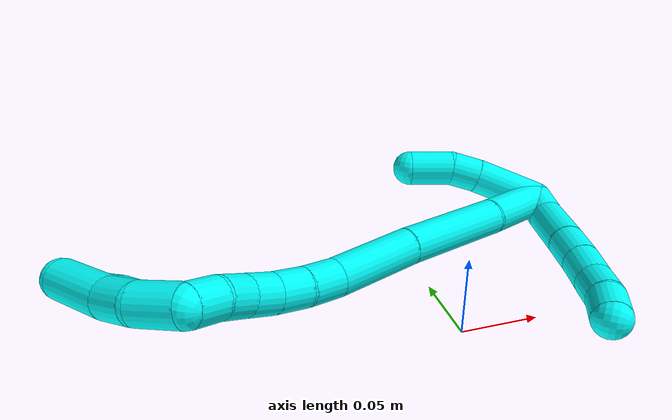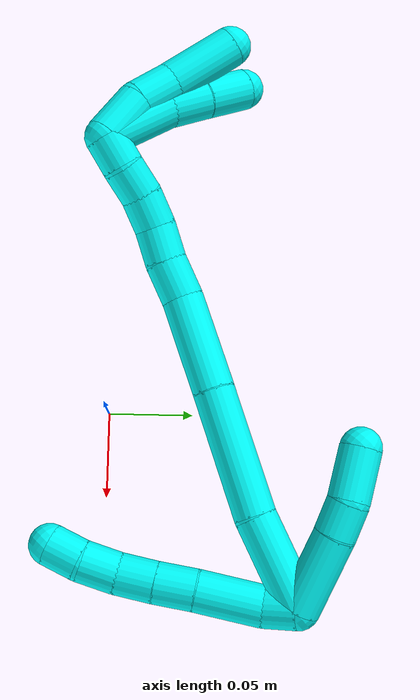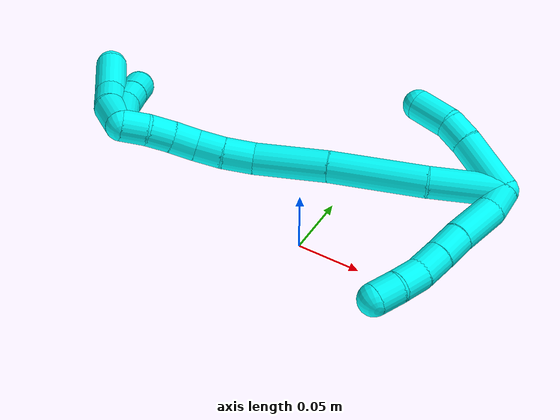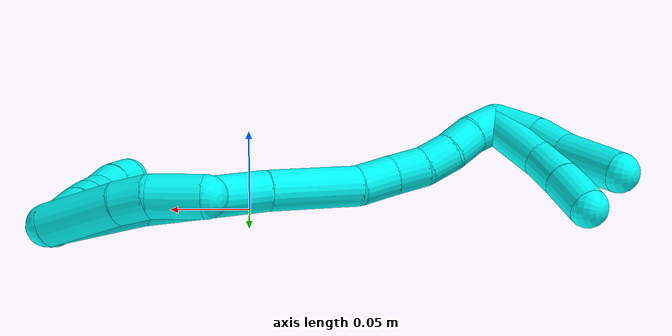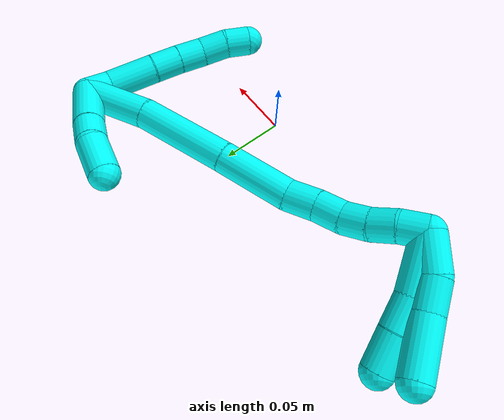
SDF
<sdf version="1.7">
 <world name="default">
  <model name="3">
   <static>0</static>
   <link name="3">
    <collision name="collision-cylinder-e_1_2_8">
     <pose>-0.007855 -0.001247 0.006347 0.193959 -0.881905 -0.091761</pose>
     <geometry><cylinder><radius>0.0125</radius><length>0.020351</length></cylinder></geometry>
     <surface>
      <friction><ode><mu>1.16</mu><mu2>1.16</mu2><slip1>0</slip1><slip2>0</slip2></ode></friction>
      <contact><ode><kp>1e+06</kp><kd>1</kd><max_vel>0</max_vel><min_depth>0.001</min_depth></ode></contact>
     </surface>
    </collision>
    <visual name="visual-cylinder-e_1_2_8">
     <pose>-0.007855 -0.001247 0.006347 0.193959 -0.881905 -0.091761</pose>
     <geometry><cylinder><radius>0.0125</radius><length>0.020351</length></cylinder></geometry>
     <material><ambient>0.003922 1 0.996078 1</ambient></material>
    </visual>
    <collision name="collision-cylinder-e_2_8_9">
     <pose>-0.032533 0.001292 0.023337 -0.34175 -0.979459 0.183445</pose>
     <geometry><cylinder><radius>0.0125</radius><length>0.040527</length></cylinder></geometry>
     <surface>
      <friction><ode><mu>1.16</mu><mu2>1.16</mu2><slip1>0</slip1><slip2>0</slip2></ode></friction>
      <contact><ode><kp>1e+06</kp><kd>1</kd><max_vel>0</max_vel><min_depth>0.001</min_depth></ode></contact>
     </surface>
    </collision>
    <visual name="visual-cylinder-e_2_8_9">
     <pose>-0.032533 0.001292 0.023337 -0.34175 -0.979459 0.183445</pose>
     <geometry><cylinder><radius>0.0125</radius><length>0.040527</length></cylinder></geometry>
     <material><ambient>0.003922 1 0.996078 1</ambient></material>
    </visual>
    <collision name="collision-cylinder-e_3_9_10">
     <pose>-0.059103 0.006417 0.040542 -0.201334 -0.968872 0.106214</pose>
     <geometry><cylinder><radius>0.0125</radius><length>0.023653</length></cylinder></geometry>
     <surface>
      <friction><ode><mu>1.16</mu><mu2>1.16</mu2><slip1>0</slip1><slip2>0</slip2></ode></friction>
      <contact><ode><kp>1e+06</kp><kd>1</kd><max_vel>0</max_vel><min_depth>0.001</min_depth></ode></contact>
     </surface>
    </collision>
    <visual name="visual-cylinder-e_3_9_10">
     <pose>-0.059103 0.006417 0.040542 -0.201334 -0.968872 0.106214</pose>
     <geometry><cylinder><radius>0.0125</radius><length>0.023653</length></cylinder></geometry>
     <material><ambient>0.003922 1 0.996078 1</ambient></material>
    </visual>
    <collision name="collision-cylinder-e_4_10_11">
     <pose>-0.078486 0.008891 0.052959 -0.191393 -1.01647 0.106839</pose>
     <geometry><cylinder><radius>0.0125</radius><length>0.022664</length></cylinder></geometry>
     <surface>
      <friction><ode><mu>1.16</mu><mu2>1.16</mu2><slip1>0</slip1><slip2>0</slip2></ode></friction>
      <contact><ode><kp>1e+06</kp><kd>1</kd><max_vel>0</max_vel><min_depth>0.001</min_depth></ode></contact>
     </surface>
    </collision>
    <visual name="visual-cylinder-e_4_10_11">
     <pose>-0.078486 0.008891 0.052959 -0.191393 -1.01647 0.106839</pose>
     <geometry><cylinder><radius>0.0125</radius><length>0.022664</length></cylinder></geometry>
     <material><ambient>0.003922 1 0.996078 1</ambient></material>
    </visual>
    <collision name="collision-cylinder-e_5_11_12">
     <pose>-0.097803 0.013113 0.063752 -0.558855 -1.02933 0.321719</pose>
     <geometry><cylinder><radius>0.0125</radius><length>0.022595</length></cylinder></geometry>
     <surface>
      <friction><ode><mu>1.16</mu><mu2>1.16</mu2><slip1>0</slip1><slip2>0</slip2></ode></friction>
      <contact><ode><kp>1e+06</kp><kd>1</kd><max_vel>0</max_vel><min_depth>0.001</min_depth></ode></contact>
     </surface>
    </collision>
    <visual name="visual-cylinder-e_5_11_12">
     <pose>-0.097803 0.013113 0.063752 -0.558855 -1.02933 0.321719</pose>
     <geometry><cylinder><radius>0.0125</radius><length>0.022595</length></cylinder></geometry>
     <material><ambient>0.003922 1 0.996078 1</ambient></material>
    </visual>
    <collision name="collision-cylinder-e_6_12_6">
     <pose>-0.116989 0.017732 0.07176 -0.462653 -1.22425 0.327775</pose>
     <geometry><cylinder><radius>0.0125</radius><length>0.02021</length></cylinder></geometry>
     <surface>
      <friction><ode><mu>1.16</mu><mu2>1.16</mu2><slip1>0</slip1><slip2>0</slip2></ode></friction>
      <contact><ode><kp>1e+06</kp><kd>1</kd><max_vel>0</max_vel><min_depth>0.001</min_depth></ode></contact>
     </surface>
    </collision>
    <visual name="visual-cylinder-e_6_12_6">
     <pose>-0.116989 0.017732 0.07176 -0.462653 -1.22425 0.327775</pose>
     <geometry><cylinder><radius>0.0125</radius><length>0.02021</length></cylinder></geometry>
     <material><ambient>0.003922 1 0.996078 1</ambient></material>
    </visual>
    <collision name="collision-cylinder-e_1_2_13">
     <pose>-0.005354 0.010159 -0.021245 -2.69557 -0.223555 0.919182</pose>
     <geometry><cylinder><radius>0.0125</radius><length>0.0483</length></cylinder></geometry>
     <surface>
      <friction><ode><mu>1.16</mu><mu2>1.16</mu2><slip1>0</slip1><slip2>0</slip2></ode></friction>
      <contact><ode><kp>1e+06</kp><kd>1</kd><max_vel>0</max_vel><min_depth>0.001</min_depth></ode></contact>
     </surface>
    </collision>
    <visual name="visual-cylinder-e_1_2_13">
     <pose>-0.005354 0.010159 -0.021245 -2.69557 -0.223555 0.919182</pose>
     <geometry><cylinder><radius>0.0125</radius><length>0.0483</length></cylinder></geometry>
     <material><ambient>0.003922 1 0.996078 1</ambient></material>
    </visual>
    <collision name="collision-cylinder-e_2_13_14">
     <pose>-0.013762 0.02401 -0.051553 -2.75474 -0.302483 1.32245</pose>
     <geometry><cylinder><radius>0.0125</radius><length>0.020504</length></cylinder></geometry>
     <surface>
      <friction><ode><mu>1.16</mu><mu2>1.16</mu2><slip1>0</slip1><slip2>0</slip2></ode></friction>
      <contact><ode><kp>1e+06</kp><kd>1</kd><max_vel>0</max_vel><min_depth>0.001</min_depth></ode></contact>
     </surface>
    </collision>
    <visual name="visual-cylinder-e_2_13_14">
     <pose>-0.013762 0.02401 -0.051553 -2.75474 -0.302483 1.32245</pose>
     <geometry><cylinder><radius>0.0125</radius><length>0.020504</length></cylinder></geometry>
     <material><ambient>0.003922 1 0.996078 1</ambient></material>
    </visual>
    <collision name="collision-cylinder-e_3_14_5">
     <pose>-0.02442 0.030161 -0.074012 -2.96003 -0.509191 2.46859</pose>
     <geometry><cylinder><radius>0.0125</radius><length>0.031196</length></cylinder></geometry>
     <surface>
      <friction><ode><mu>1.16</mu><mu2>1.16</mu2><slip1>0</slip1><slip2>0</slip2></ode></friction>
      <contact><ode><kp>1e+06</kp><kd>1</kd><max_vel>0</max_vel><min_depth>0.001</min_depth></ode></contact>
     </surface>
    </collision>
    <visual name="visual-cylinder-e_3_14_5">
     <pose>-0.02442 0.030161 -0.074012 -2.96003 -0.509191 2.46859</pose>
     <geometry><cylinder><radius>0.0125</radius><length>0.031196</length></cylinder></geometry>
     <material><ambient>0.003922 1 0.996078 1</ambient></material>
    </visual>
    <collision name="collision-cylinder-e_1_2_15">
     <pose>-0.025887 0.008191 -0.009751 -2.44293 -1.11364 2.08274</pose>
     <geometry><cylinder><radius>0.0125</radius><length>0.057699</length></cylinder></geometry>
     <surface>
      <friction><ode><mu>1.16</mu><mu2>1.16</mu2><slip1>0</slip1><slip2>0</slip2></ode></friction>
      <contact><ode><kp>1e+06</kp><kd>1</kd><max_vel>0</max_vel><min_depth>0.001</min_depth></ode></contact>
     </surface>
    </collision>
    <visual name="visual-cylinder-e_1_2_15">
     <pose>-0.025887 0.008191 -0.009751 -2.44293 -1.11364 2.08274</pose>
     <geometry><cylinder><radius>0.0125</radius><length>0.057699</length></cylinder></geometry>
     <material><ambient>0.003922 1 0.996078 1</ambient></material>
    </visual>
    <collision name="collision-cylinder-e_2_15_16">
     <pose>-0.084851 0.024696 -0.037017 -2.69839 -1.0406 2.39229</pose>
     <geometry><cylinder><radius>0.0125</radius><length>0.076682</length></cylinder></geometry>
     <surface>
      <friction><ode><mu>1.16</mu><mu2>1.16</mu2><slip1>0</slip1><slip2>0</slip2></ode></friction>
      <contact><ode><kp>1e+06</kp><kd>1</kd><max_vel>0</max_vel><min_depth>0.001</min_depth></ode></contact>
     </surface>
    </collision>
    <visual name="visual-cylinder-e_2_15_16">
     <pose>-0.084851 0.024696 -0.037017 -2.69839 -1.0406 2.39229</pose>
     <geometry><cylinder><radius>0.0125</radius><length>0.076682</length></cylinder></geometry>
     <material><ambient>0.003922 1 0.996078 1</ambient></material>
    </visual>
    <collision name="collision-cylinder-e_3_16_17">
     <pose>-0.143574 0.037669 -0.067806 -2.80408 -1.06909 2.58117</pose>
     <geometry><cylinder><radius>0.0125</radius><length>0.058502</length></cylinder></geometry>
     <surface>
      <friction><ode><mu>1.16</mu><mu2>1.16</mu2><slip1>0</slip1><slip2>0</slip2></ode></friction>
      <contact><ode><kp>1e+06</kp><kd>1</kd><max_vel>0</max_vel><min_depth>0.001</min_depth></ode></contact>
     </surface>
    </collision>
    <visual name="visual-cylinder-e_3_16_17">
     <pose>-0.143574 0.037669 -0.067806 -2.80408 -1.06909 2.58117</pose>
     <geometry><cylinder><radius>0.0125</radius><length>0.058502</length></cylinder></geometry>
     <material><ambient>0.003922 1 0.996078 1</ambient></material>
    </visual>
    <collision name="collision-cylinder-e_4_17_18">
     <pose>-0.179832 0.046696 -0.085282 -2.33666 -1.05182 1.87599</pose>
     <geometry><cylinder><radius>0.0125</radius><length>0.024441</length></cylinder></geometry>
     <surface>
      <friction><ode><mu>1.16</mu><mu2>1.16</mu2><slip1>0</slip1><slip2>0</slip2></ode></friction>
      <contact><ode><kp>1e+06</kp><kd>1</kd><max_vel>0</max_vel><min_depth>0.001</min_depth></ode></contact>
     </surface>
    </collision>
    <visual name="visual-cylinder-e_4_17_18">
     <pose>-0.179832 0.046696 -0.085282 -2.33666 -1.05182 1.87599</pose>
     <geometry><cylinder><radius>0.0125</radius><length>0.024441</length></cylinder></geometry>
     <material><ambient>0.003922 1 0.996078 1</ambient></material>
    </visual>
    <collision name="collision-cylinder-e_5_18_19">
     <pose>-0.199184 0.055001 -0.094359 -2.46237 -0.948832 1.93637</pose>
     <geometry><cylinder><radius>0.0125</radius><length>0.02151</length></cylinder></geometry>
     <surface>
      <friction><ode><mu>1.16</mu><mu2>1.16</mu2><slip1>0</slip1><slip2>0</slip2></ode></friction>
      <contact><ode><kp>1e+06</kp><kd>1</kd><max_vel>0</max_vel><min_depth>0.001</min_depth></ode></contact>
     </surface>
    </collision>
    <visual name="visual-cylinder-e_5_18_19">
     <pose>-0.199184 0.055001 -0.094359 -2.46237 -0.948832 1.93637</pose>
     <geometry><cylinder><radius>0.0125</radius><length>0.02151</length></cylinder></geometry>
     <material><ambient>0.003922 1 0.996078 1</ambient></material>
    </visual>
    <collision name="collision-cylinder-e_6_19_20">
     <pose>-0.216025 0.06448 -0.102464 -2.09841 -0.90095 1.39918</pose>
     <geometry><cylinder><radius>0.0125</radius><length>0.020664</length></cylinder></geometry>
     <surface>
      <friction><ode><mu>1.16</mu><mu2>1.16</mu2><slip1>0</slip1><slip2>0</slip2></ode></friction>
      <contact><ode><kp>1e+06</kp><kd>1</kd><max_vel>0</max_vel><min_depth>0.001</min_depth></ode></contact>
     </surface>
    </collision>
    <visual name="visual-cylinder-e_6_19_20">
     <pose>-0.216025 0.06448 -0.102464 -2.09841 -0.90095 1.39918</pose>
     <geometry><cylinder><radius>0.0125</radius><length>0.020664</length></cylinder></geometry>
     <material><ambient>0.003922 1 0.996078 1</ambient></material>
    </visual>
    <collision name="collision-cylinder-e_7_20_21">
     <pose>-0.232049 0.076136 -0.107161 -1.80636 -0.900122 1.09957</pose>
     <geometry><cylinder><radius>0.0125</radius><length>0.020232</length></cylinder></geometry>
     <surface>
      <friction><ode><mu>1.16</mu><mu2>1.16</mu2><slip1>0</slip1><slip2>0</slip2></ode></friction>
      <contact><ode><kp>1e+06</kp><kd>1</kd><max_vel>0</max_vel><min_depth>0.001</min_depth></ode></contact>
     </surface>
    </collision>
    <visual name="visual-cylinder-e_7_20_21">
     <pose>-0.232049 0.076136 -0.107161 -1.80636 -0.900122 1.09957</pose>
     <geometry><cylinder><radius>0.0125</radius><length>0.020232</length></cylinder></geometry>
     <material><ambient>0.003922 1 0.996078 1</ambient></material>
    </visual>
    <collision name="collision-cylinder-e_8_21_1">
     <pose>-0.248729 0.086822 -0.110901 -2.03209 -1.04282 1.49508</pose>
     <geometry><cylinder><radius>0.0125</radius><length>0.02027</length></cylinder></geometry>
     <surface>
      <friction><ode><mu>1.16</mu><mu2>1.16</mu2><slip1>0</slip1><slip2>0</slip2></ode></friction>
      <contact><ode><kp>1e+06</kp><kd>1</kd><max_vel>0</max_vel><min_depth>0.001</min_depth></ode></contact>
     </surface>
    </collision>
    <visual name="visual-cylinder-e_8_21_1">
     <pose>-0.248729 0.086822 -0.110901 -2.03209 -1.04282 1.49508</pose>
     <geometry><cylinder><radius>0.0125</radius><length>0.02027</length></cylinder></geometry>
     <material><ambient>0.003922 1 0.996078 1</ambient></material>
    </visual>
    <collision name="collision-cylinder-e_1_1_22">
     <pose>-0.254775 0.083086 -0.134309 2.76706 0.118709 0.607789</pose>
     <geometry><cylinder><radius>0.0125</radius><length>0.045742</length></cylinder></geometry>
     <surface>
      <friction><ode><mu>1.16</mu><mu2>1.16</mu2><slip1>0</slip1><slip2>0</slip2></ode></friction>
      <contact><ode><kp>1e+06</kp><kd>1</kd><max_vel>0</max_vel><min_depth>0.001</min_depth></ode></contact>
     </surface>
    </collision>
    <visual name="visual-cylinder-e_1_1_22">
     <pose>-0.254775 0.083086 -0.134309 2.76706 0.118709 0.607789</pose>
     <geometry><cylinder><radius>0.0125</radius><length>0.045742</length></cylinder></geometry>
     <material><ambient>0.003922 1 0.996078 1</ambient></material>
    </visual>
    <collision name="collision-cylinder-e_2_22_23">
     <pose>-0.248277 0.06989 -0.166769 2.73413 0.298105 1.25704</pose>
     <geometry><cylinder><radius>0.0125</radius><length>0.025806</length></cylinder></geometry>
     <surface>
      <friction><ode><mu>1.16</mu><mu2>1.16</mu2><slip1>0</slip1><slip2>0</slip2></ode></friction>
      <contact><ode><kp>1e+06</kp><kd>1</kd><max_vel>0</max_vel><min_depth>0.001</min_depth></ode></contact>
     </surface>
    </collision>
    <visual name="visual-cylinder-e_2_22_23">
     <pose>-0.248277 0.06989 -0.166769 2.73413 0.298105 1.25704</pose>
     <geometry><cylinder><radius>0.0125</radius><length>0.025806</length></cylinder></geometry>
     <material><ambient>0.003922 1 0.996078 1</ambient></material>
    </visual>
    <collision name="collision-cylinder-e_3_23_4">
     <pose>-0.240731 0.058839 -0.190352 2.67573 0.267202 1.03089</pose>
     <geometry><cylinder><radius>0.0125</radius><length>0.028452</length></cylinder></geometry>
     <surface>
      <friction><ode><mu>1.16</mu><mu2>1.16</mu2><slip1>0</slip1><slip2>0</slip2></ode></friction>
      <contact><ode><kp>1e+06</kp><kd>1</kd><max_vel>0</max_vel><min_depth>0.001</min_depth></ode></contact>
     </surface>
    </collision>
    <visual name="visual-cylinder-e_3_23_4">
     <pose>-0.240731 0.058839 -0.190352 2.67573 0.267202 1.03089</pose>
     <geometry><cylinder><radius>0.0125</radius><length>0.028452</length></cylinder></geometry>
     <material><ambient>0.003922 1 0.996078 1</ambient></material>
    </visual>
    <collision name="collision-cylinder-e_1_1_24">
     <pose>-0.259881 0.089529 -0.12802 3.01659 -0.158857 -1.80898</pose>
     <geometry><cylinder><radius>0.0125</radius><length>0.030309</length></cylinder></geometry>
     <surface>
      <friction><ode><mu>1.16</mu><mu2>1.16</mu2><slip1>0</slip1><slip2>0</slip2></ode></friction>
      <contact><ode><kp>1e+06</kp><kd>1</kd><max_vel>0</max_vel><min_depth>0.001</min_depth></ode></contact>
     </surface>
    </collision>
    <visual name="visual-cylinder-e_1_1_24">
     <pose>-0.259881 0.089529 -0.12802 3.01659 -0.158857 -1.80898</pose>
     <geometry><cylinder><radius>0.0125</radius><length>0.030309</length></cylinder></geometry>
     <material><ambient>0.003922 1 0.996078 1</ambient></material>
    </visual>
    <collision name="collision-cylinder-e_2_24_25">
     <pose>-0.260861 0.084371 -0.154998 2.87662 0.112321 0.798405</pose>
     <geometry><cylinder><radius>0.0125</radius><length>0.025299</length></cylinder></geometry>
     <surface>
      <friction><ode><mu>1.16</mu><mu2>1.16</mu2><slip1>0</slip1><slip2>0</slip2></ode></friction>
      <contact><ode><kp>1e+06</kp><kd>1</kd><max_vel>0</max_vel><min_depth>0.001</min_depth></ode></contact>
     </surface>
    </collision>
    <visual name="visual-cylinder-e_2_24_25">
     <pose>-0.260861 0.084371 -0.154998 2.87662 0.112321 0.798405</pose>
     <geometry><cylinder><radius>0.0125</radius><length>0.025299</length></cylinder></geometry>
     <material><ambient>0.003922 1 0.996078 1</ambient></material>
    </visual>
    <collision name="collision-cylinder-e_3_25_3">
     <pose>-0.255968 0.078417 -0.18889 3.01987 0.157179 1.82448</pose>
     <geometry><cylinder><radius>0.0125</radius><length>0.044392</length></cylinder></geometry>
     <surface>
      <friction><ode><mu>1.16</mu><mu2>1.16</mu2><slip1>0</slip1><slip2>0</slip2></ode></friction>
      <contact><ode><kp>1e+06</kp><kd>1</kd><max_vel>0</max_vel><min_depth>0.001</min_depth></ode></contact>
     </surface>
    </collision>
    <visual name="visual-cylinder-e_3_25_3">
     <pose>-0.255968 0.078417 -0.18889 3.01987 0.157179 1.82448</pose>
     <geometry><cylinder><radius>0.0125</radius><length>0.044392</length></cylinder></geometry>
     <material><ambient>0.003922 1 0.996078 1</ambient></material>
    </visual>
    <collision name="collision-sphere-3">
     <pose>-0.252494 0.075755 -0.21065 0 -0 0</pose>
     <geometry><sphere><radius>0.0125</radius></sphere></geometry>
     <surface>
      <friction><ode><mu>1.16</mu><mu2>1.16</mu2><slip1>0</slip1><slip2>0</slip2></ode></friction>
      <contact><ode><kp>1e+06</kp><kd>1</kd><max_vel>0</max_vel><min_depth>0.001</min_depth></ode></contact>
     </surface>
    </collision>
    <visual name="visual-sphere-3">
     <pose>-0.252494 0.075755 -0.21065 0 -0 0</pose>
     <geometry><sphere><radius>0.0125</radius></sphere></geometry>
     <material><ambient>0.003922 1 0.996078 1</ambient></material>
    </visual>
    <collision name="collision-sphere-25">
     <pose>-0.259443 0.081079 -0.16713 0 -0 0</pose>
     <geometry><sphere><radius>0.0125</radius></sphere></geometry>
     <surface>
      <friction><ode><mu>1.16</mu><mu2>1.16</mu2><slip1>0</slip1><slip2>0</slip2></ode></friction>
      <contact><ode><kp>1e+06</kp><kd>1</kd><max_vel>0</max_vel><min_depth>0.001</min_depth></ode></contact>
     </surface>
    </collision>
    <visual name="visual-sphere-25">
     <pose>-0.259443 0.081079 -0.16713 0 -0 0</pose>
     <geometry><sphere><radius>0.0125</radius></sphere></geometry>
     <material><ambient>0.003922 1 0.996078 1</ambient></material>
    </visual>
    <collision name="collision-sphere-24">
     <pose>-0.262278 0.087663 -0.142867 0 -0 0</pose>
     <geometry><sphere><radius>0.0125</radius></sphere></geometry>
     <surface>
      <friction><ode><mu>1.16</mu><mu2>1.16</mu2><slip1>0</slip1><slip2>0</slip2></ode></friction>
      <contact><ode><kp>1e+06</kp><kd>1</kd><max_vel>0</max_vel><min_depth>0.001</min_depth></ode></contact>
     </surface>
    </collision>
    <visual name="visual-sphere-24">
     <pose>-0.262278 0.087663 -0.142867 0 -0 0</pose>
     <geometry><sphere><radius>0.0125</radius></sphere></geometry>
     <material><ambient>0.003922 1 0.996078 1</ambient></material>
    </visual>
    <collision name="collision-sphere-4">
     <pose>-0.236975 0.052676 -0.202611 0 -0 0</pose>
     <geometry><sphere><radius>0.0125</radius></sphere></geometry>
     <surface>
      <friction><ode><mu>1.16</mu><mu2>1.16</mu2><slip1>0</slip1><slip2>0</slip2></ode></friction>
      <contact><ode><kp>1e+06</kp><kd>1</kd><max_vel>0</max_vel><min_depth>0.001</min_depth></ode></contact>
     </surface>
    </collision>
    <visual name="visual-sphere-4">
     <pose>-0.236975 0.052676 -0.202611 0 -0 0</pose>
     <geometry><sphere><radius>0.0125</radius></sphere></geometry>
     <material><ambient>0.003922 1 0.996078 1</ambient></material>
    </visual>
    <collision name="collision-sphere-23">
     <pose>-0.244487 0.065003 -0.178093 0 -0 0</pose>
     <geometry><sphere><radius>0.0125</radius></sphere></geometry>
     <surface>
      <friction><ode><mu>1.16</mu><mu2>1.16</mu2><slip1>0</slip1><slip2>0</slip2></ode></friction>
      <contact><ode><kp>1e+06</kp><kd>1</kd><max_vel>0</max_vel><min_depth>0.001</min_depth></ode></contact>
     </surface>
    </collision>
    <visual name="visual-sphere-23">
     <pose>-0.244487 0.065003 -0.178093 0 -0 0</pose>
     <geometry><sphere><radius>0.0125</radius></sphere></geometry>
     <material><ambient>0.003922 1 0.996078 1</ambient></material>
    </visual>
    <collision name="collision-sphere-22">
     <pose>-0.252067 0.074778 -0.155445 0 -0 0</pose>
     <geometry><sphere><radius>0.0125</radius></sphere></geometry>
     <surface>
      <friction><ode><mu>1.16</mu><mu2>1.16</mu2><slip1>0</slip1><slip2>0</slip2></ode></friction>
      <contact><ode><kp>1e+06</kp><kd>1</kd><max_vel>0</max_vel><min_depth>0.001</min_depth></ode></contact>
     </surface>
    </collision>
    <visual name="visual-sphere-22">
     <pose>-0.252067 0.074778 -0.155445 0 -0 0</pose>
     <geometry><sphere><radius>0.0125</radius></sphere></geometry>
     <material><ambient>0.003922 1 0.996078 1</ambient></material>
    </visual>
    <collision name="collision-sphere-1">
     <pose>-0.257484 0.091394 -0.113173 0 -0 0</pose>
     <geometry><sphere><radius>0.0125</radius></sphere></geometry>
     <surface>
      <friction><ode><mu>1.16</mu><mu2>1.16</mu2><slip1>0</slip1><slip2>0</slip2></ode></friction>
      <contact><ode><kp>1e+06</kp><kd>1</kd><max_vel>0</max_vel><min_depth>0.001</min_depth></ode></contact>
     </surface>
    </collision>
    <visual name="visual-sphere-1">
     <pose>-0.257484 0.091394 -0.113173 0 -0 0</pose>
     <geometry><sphere><radius>0.0125</radius></sphere></geometry>
     <material><ambient>0.003922 1 0.996078 1</ambient></material>
    </visual>
    <collision name="collision-sphere-21">
     <pose>-0.239974 0.08225 -0.108628 0 -0 0</pose>
     <geometry><sphere><radius>0.0125</radius></sphere></geometry>
     <surface>
      <friction><ode><mu>1.16</mu><mu2>1.16</mu2><slip1>0</slip1><slip2>0</slip2></ode></friction>
      <contact><ode><kp>1e+06</kp><kd>1</kd><max_vel>0</max_vel><min_depth>0.001</min_depth></ode></contact>
     </surface>
    </collision>
    <visual name="visual-sphere-21">
     <pose>-0.239974 0.08225 -0.108628 0 -0 0</pose>
     <geometry><sphere><radius>0.0125</radius></sphere></geometry>
     <material><ambient>0.003922 1 0.996078 1</ambient></material>
    </visual>
    <collision name="collision-sphere-12">
     <pose>-0.107484 0.0162 0.068688 0 -0 0</pose>
     <geometry><sphere><radius>0.0125</radius></sphere></geometry>
     <surface>
      <friction><ode><mu>1.16</mu><mu2>1.16</mu2><slip1>0</slip1><slip2>0</slip2></ode></friction>
      <contact><ode><kp>1e+06</kp><kd>1</kd><max_vel>0</max_vel><min_depth>0.001</min_depth></ode></contact>
     </surface>
    </collision>
    <visual name="visual-sphere-12">
     <pose>-0.107484 0.0162 0.068688 0 -0 0</pose>
     <geometry><sphere><radius>0.0125</radius></sphere></geometry>
     <material><ambient>0.003922 1 0.996078 1</ambient></material>
    </visual>
    <collision name="collision-sphere-11">
     <pose>-0.088122 0.010026 0.058815 0 -0 0</pose>
     <geometry><sphere><radius>0.0125</radius></sphere></geometry>
     <surface>
      <friction><ode><mu>1.16</mu><mu2>1.16</mu2><slip1>0</slip1><slip2>0</slip2></ode></friction>
      <contact><ode><kp>1e+06</kp><kd>1</kd><max_vel>0</max_vel><min_depth>0.001</min_depth></ode></contact>
     </surface>
    </collision>
    <visual name="visual-sphere-11">
     <pose>-0.088122 0.010026 0.058815 0 -0 0</pose>
     <geometry><sphere><radius>0.0125</radius></sphere></geometry>
     <material><ambient>0.003922 1 0.996078 1</ambient></material>
    </visual>
    <collision name="collision-sphere-10">
     <pose>-0.068851 0.007756 0.047103 0 -0 0</pose>
     <geometry><sphere><radius>0.0125</radius></sphere></geometry>
     <surface>
      <friction><ode><mu>1.16</mu><mu2>1.16</mu2><slip1>0</slip1><slip2>0</slip2></ode></friction>
      <contact><ode><kp>1e+06</kp><kd>1</kd><max_vel>0</max_vel><min_depth>0.001</min_depth></ode></contact>
     </surface>
    </collision>
    <visual name="visual-sphere-10">
     <pose>-0.068851 0.007756 0.047103 0 -0 0</pose>
     <geometry><sphere><radius>0.0125</radius></sphere></geometry>
     <material><ambient>0.003922 1 0.996078 1</ambient></material>
    </visual>
    <collision name="collision-sphere-9">
     <pose>-0.049355 0.005078 0.03398 0 -0 0</pose>
     <geometry><sphere><radius>0.0125</radius></sphere></geometry>
     <surface>
      <friction><ode><mu>1.16</mu><mu2>1.16</mu2><slip1>0</slip1><slip2>0</slip2></ode></friction>
      <contact><ode><kp>1e+06</kp><kd>1</kd><max_vel>0</max_vel><min_depth>0.001</min_depth></ode></contact>
     </surface>
    </collision>
    <visual name="visual-sphere-9">
     <pose>-0.049355 0.005078 0.03398 0 -0 0</pose>
     <geometry><sphere><radius>0.0125</radius></sphere></geometry>
     <material><ambient>0.003922 1 0.996078 1</ambient></material>
    </visual>
    <collision name="collision-sphere-2">
     <geometry><sphere><radius>0.0125</radius></sphere></geometry>
     <surface>
      <friction><ode><mu>1.16</mu><mu2>1.16</mu2><slip1>0</slip1><slip2>0</slip2></ode></friction>
      <contact><ode><kp>1e+06</kp><kd>1</kd><max_vel>0</max_vel><min_depth>0.001</min_depth></ode></contact>
     </surface>
    </collision>
    <visual name="visual-sphere-2">
     <geometry><sphere><radius>0.0125</radius></sphere></geometry>
     <material><ambient>0.003922 1 0.996078 1</ambient></material>
    </visual>
    <collision name="collision-sphere-19">
     <pose>-0.207925 0.058938 -0.099234 0 -0 0</pose>
     <geometry><sphere><radius>0.0125</radius></sphere></geometry>
     <surface>
      <friction><ode><mu>1.16</mu><mu2>1.16</mu2><slip1>0</slip1><slip2>0</slip2></ode></friction>
      <contact><ode><kp>1e+06</kp><kd>1</kd><max_vel>0</max_vel><min_depth>0.001</min_depth></ode></contact>
     </surface>
    </collision>
    <visual name="visual-sphere-19">
     <pose>-0.207925 0.058938 -0.099234 0 -0 0</pose>
     <geometry><sphere><radius>0.0125</radius></sphere></geometry>
     <material><ambient>0.003922 1 0.996078 1</ambient></material>
    </visual>
    <collision name="collision-sphere-8">
     <pose>-0.01571 -0.002493 0.012694 0 -0 0</pose>
     <geometry><sphere><radius>0.0125</radius></sphere></geometry>
     <surface>
      <friction><ode><mu>1.16</mu><mu2>1.16</mu2><slip1>0</slip1><slip2>0</slip2></ode></friction>
      <contact><ode><kp>1e+06</kp><kd>1</kd><max_vel>0</max_vel><min_depth>0.001</min_depth></ode></contact>
     </surface>
    </collision>
    <visual name="visual-sphere-8">
     <pose>-0.01571 -0.002493 0.012694 0 -0 0</pose>
     <geometry><sphere><radius>0.0125</radius></sphere></geometry>
     <material><ambient>0.003922 1 0.996078 1</ambient></material>
    </visual>
    <collision name="collision-sphere-6">
     <pose>-0.126493 0.019264 0.074831 0 -0 0</pose>
     <geometry><sphere><radius>0.0125</radius></sphere></geometry>
     <surface>
      <friction><ode><mu>1.16</mu><mu2>1.16</mu2><slip1>0</slip1><slip2>0</slip2></ode></friction>
      <contact><ode><kp>1e+06</kp><kd>1</kd><max_vel>0</max_vel><min_depth>0.001</min_depth></ode></contact>
     </surface>
    </collision>
    <visual name="visual-sphere-6">
     <pose>-0.126493 0.019264 0.074831 0 -0 0</pose>
     <geometry><sphere><radius>0.0125</radius></sphere></geometry>
     <material><ambient>0.003922 1 0.996078 1</ambient></material>
    </visual>
    <collision name="collision-sphere-13">
     <pose>-0.010708 0.020317 -0.04249 0 -0 0</pose>
     <geometry><sphere><radius>0.0125</radius></sphere></geometry>
     <surface>
      <friction><ode><mu>1.16</mu><mu2>1.16</mu2><slip1>0</slip1><slip2>0</slip2></ode></friction>
      <contact><ode><kp>1e+06</kp><kd>1</kd><max_vel>0</max_vel><min_depth>0.001</min_depth></ode></contact>
     </surface>
    </collision>
    <visual name="visual-sphere-13">
     <pose>-0.010708 0.020317 -0.04249 0 -0 0</pose>
     <geometry><sphere><radius>0.0125</radius></sphere></geometry>
     <material><ambient>0.003922 1 0.996078 1</ambient></material>
    </visual>
    <collision name="collision-sphere-14">
     <pose>-0.016816 0.027702 -0.060617 0 -0 0</pose>
     <geometry><sphere><radius>0.0125</radius></sphere></geometry>
     <surface>
      <friction><ode><mu>1.16</mu><mu2>1.16</mu2><slip1>0</slip1><slip2>0</slip2></ode></friction>
      <contact><ode><kp>1e+06</kp><kd>1</kd><max_vel>0</max_vel><min_depth>0.001</min_depth></ode></contact>
     </surface>
    </collision>
    <visual name="visual-sphere-14">
     <pose>-0.016816 0.027702 -0.060617 0 -0 0</pose>
     <geometry><sphere><radius>0.0125</radius></sphere></geometry>
     <material><ambient>0.003922 1 0.996078 1</ambient></material>
    </visual>
    <collision name="collision-sphere-5">
     <pose>-0.032023 0.03262 -0.087408 0 -0 0</pose>
     <geometry><sphere><radius>0.0125</radius></sphere></geometry>
     <surface>
      <friction><ode><mu>1.16</mu><mu2>1.16</mu2><slip1>0</slip1><slip2>0</slip2></ode></friction>
      <contact><ode><kp>1e+06</kp><kd>1</kd><max_vel>0</max_vel><min_depth>0.001</min_depth></ode></contact>
     </surface>
    </collision>
    <visual name="visual-sphere-5">
     <pose>-0.032023 0.03262 -0.087408 0 -0 0</pose>
     <geometry><sphere><radius>0.0125</radius></sphere></geometry>
     <material><ambient>0.003922 1 0.996078 1</ambient></material>
    </visual>
    <collision name="collision-sphere-15">
     <pose>-0.051774 0.016381 -0.019501 0 -0 0</pose>
     <geometry><sphere><radius>0.0125</radius></sphere></geometry>
     <surface>
      <friction><ode><mu>1.16</mu><mu2>1.16</mu2><slip1>0</slip1><slip2>0</slip2></ode></friction>
      <contact><ode><kp>1e+06</kp><kd>1</kd><max_vel>0</max_vel><min_depth>0.001</min_depth></ode></contact>
     </surface>
    </collision>
    <visual name="visual-sphere-15">
     <pose>-0.051774 0.016381 -0.019501 0 -0 0</pose>
     <geometry><sphere><radius>0.0125</radius></sphere></geometry>
     <material><ambient>0.003922 1 0.996078 1</ambient></material>
    </visual>
    <collision name="collision-sphere-16">
     <pose>-0.117928 0.033011 -0.054533 0 -0 0</pose>
     <geometry><sphere><radius>0.0125</radius></sphere></geometry>
     <surface>
      <friction><ode><mu>1.16</mu><mu2>1.16</mu2><slip1>0</slip1><slip2>0</slip2></ode></friction>
      <contact><ode><kp>1e+06</kp><kd>1</kd><max_vel>0</max_vel><min_depth>0.001</min_depth></ode></contact>
     </surface>
    </collision>
    <visual name="visual-sphere-16">
     <pose>-0.117928 0.033011 -0.054533 0 -0 0</pose>
     <geometry><sphere><radius>0.0125</radius></sphere></geometry>
     <material><ambient>0.003922 1 0.996078 1</ambient></material>
    </visual>
    <collision name="collision-sphere-17">
     <pose>-0.169221 0.042327 -0.08108 0 -0 0</pose>
     <geometry><sphere><radius>0.0125</radius></sphere></geometry>
     <surface>
      <friction><ode><mu>1.16</mu><mu2>1.16</mu2><slip1>0</slip1><slip2>0</slip2></ode></friction>
      <contact><ode><kp>1e+06</kp><kd>1</kd><max_vel>0</max_vel><min_depth>0.001</min_depth></ode></contact>
     </surface>
    </collision>
    <visual name="visual-sphere-17">
     <pose>-0.169221 0.042327 -0.08108 0 -0 0</pose>
     <geometry><sphere><radius>0.0125</radius></sphere></geometry>
     <material><ambient>0.003922 1 0.996078 1</ambient></material>
    </visual>
    <collision name="collision-sphere-18">
     <pose>-0.190443 0.051065 -0.089483 0 -0 0</pose>
     <geometry><sphere><radius>0.0125</radius></sphere></geometry>
     <surface>
      <friction><ode><mu>1.16</mu><mu2>1.16</mu2><slip1>0</slip1><slip2>0</slip2></ode></friction>
      <contact><ode><kp>1e+06</kp><kd>1</kd><max_vel>0</max_vel><min_depth>0.001</min_depth></ode></contact>
     </surface>
    </collision>
    <visual name="visual-sphere-18">
     <pose>-0.190443 0.051065 -0.089483 0 -0 0</pose>
     <geometry><sphere><radius>0.0125</radius></sphere></geometry>
     <material><ambient>0.003922 1 0.996078 1</ambient></material>
    </visual>
    <collision name="collision-sphere-20">
     <pose>-0.224124 0.070023 -0.105693 0 -0 0</pose>
     <geometry><sphere><radius>0.0125</radius></sphere></geometry>
     <surface>
      <friction><ode><mu>1.16</mu><mu2>1.16</mu2><slip1>0</slip1><slip2>0</slip2></ode></friction>
      <contact><ode><kp>1e+06</kp><kd>1</kd><max_vel>0</max_vel><min_depth>0.001</min_depth></ode></contact>
     </surface>
    </collision>
    <visual name="visual-sphere-20">
     <pose>-0.224124 0.070023 -0.105693 0 -0 0</pose>
     <geometry><sphere><radius>0.0125</radius></sphere></geometry>
     <material><ambient>0.003922 1 0.996078 1</ambient></material>
    </visual>
    <inertial>
     <pose>-0.134081 0.040124 -0.064443 0 -0 0</pose>
     <mass>0.75</mass>
     <inertia><ixx>2.5e-05</ixx><ixy>0</ixy><ixz>0</ixz><iyy>0.000151</iyy><iyz>0</iyz><izz>4.4e-05</izz></inertia>
    </inertial>
   </link>
   <pose>0.112531 0.113512 0.018947 1.54038 -0.202337 0.818759</pose>
  </model>
 </world>
</sdf>
